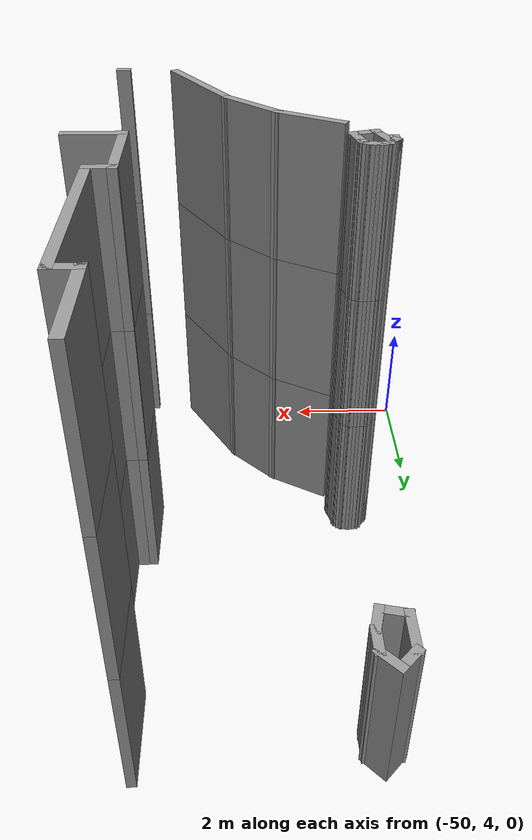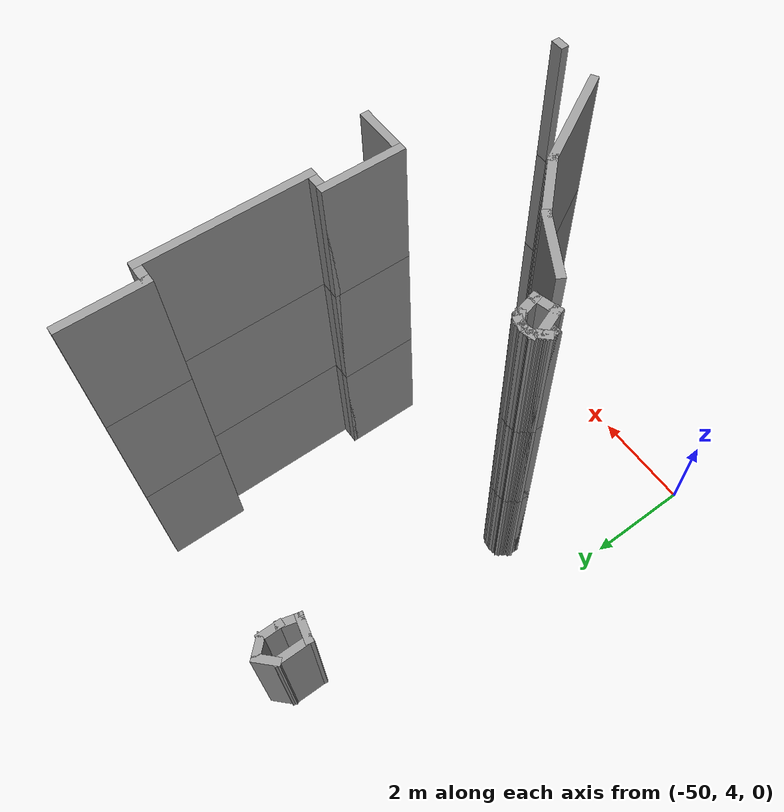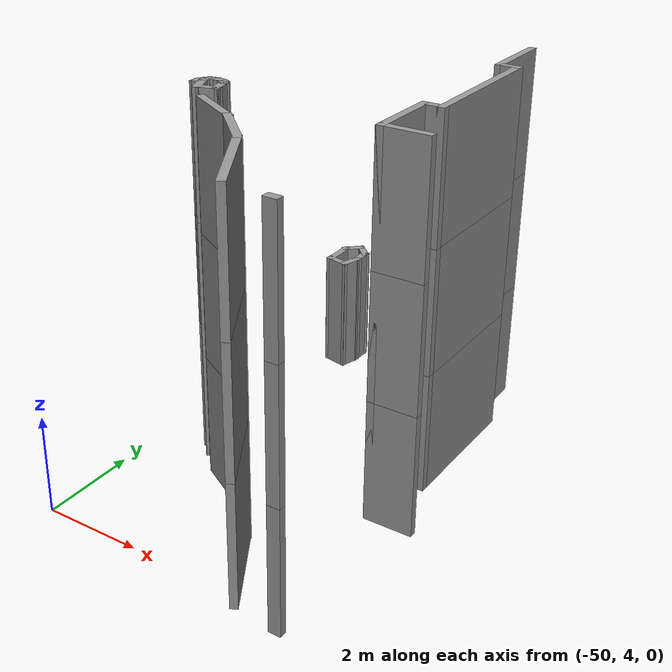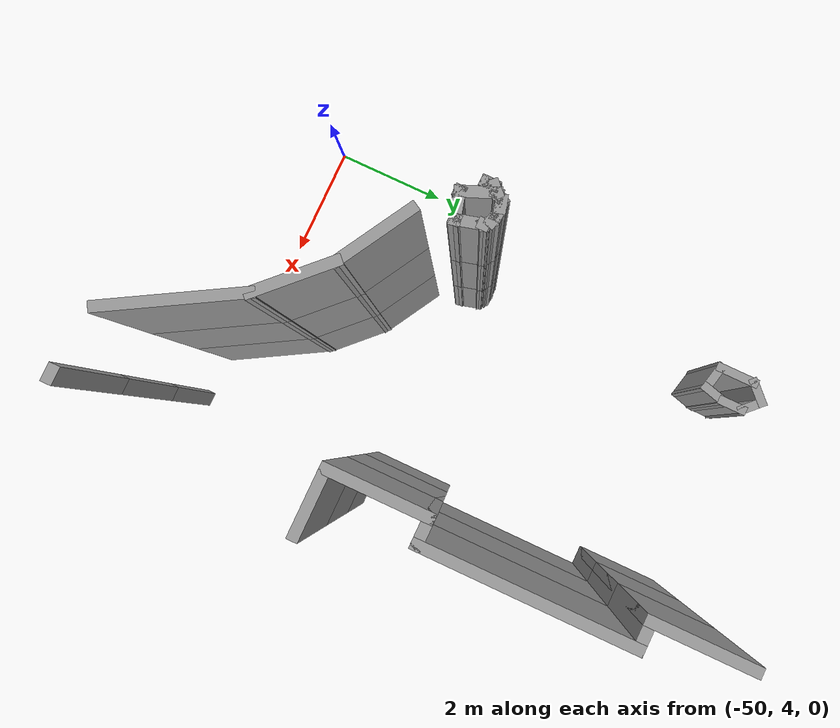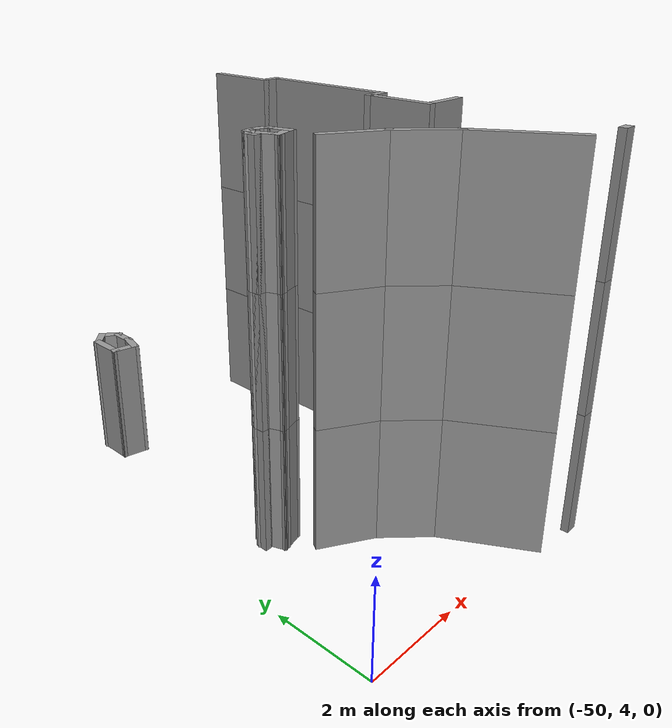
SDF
<sdf version="1.7">
 <model name="mapagazebo">
  <pose>-4.67869 9.01252 0 0 -0 0</pose>
  <link name="Wall_1002">
   <collision name="Wall_1002_Collision">
    <geometry><box><size>0.25 0.15 2.5</size></box></geometry>
    <pose>0 0 1.25 0 -0 0</pose>
   </collision>
   <visual name="Wall_1002_Visual">
    <pose>0 0 1.25 0 -0 0</pose>
    <geometry><box><size>0.25 0.15 2.5</size></box></geometry>
    <material>
     <script><uri>file://media/materials/scripts/gazebo.material</uri><name>Gazebo/Grey</name></script>
     <ambient>1 1 1 1</ambient>
    </material>
    <meta><layer>1</layer></meta>
   </visual>
   <pose>-40.0051 -5.34227 2.5 0 -0 0</pose>
  </link>
  <link name="Wall_1012">
   <collision name="Wall_1012_Collision">
    <geometry><box><size>0.25 0.15 2.5</size></box></geometry>
    <pose>0 0 1.25 0 -0 0</pose>
   </collision>
   <visual name="Wall_1012_Visual">
    <pose>0 0 1.25 0 -0 0</pose>
    <geometry><box><size>0.25 0.15 2.5</size></box></geometry>
    <material>
     <script><uri>file://media/materials/scripts/gazebo.material</uri><name>Gazebo/Grey</name></script>
     <ambient>1 1 1 1</ambient>
    </material>
    <meta><layer>1</layer></meta>
   </visual>
   <pose>-44.2708 -1.57979 2.5 0 -0 -1.5708</pose>
  </link>
  <link name="Wall_1013">
   <collision name="Wall_1013_Collision">
    <geometry><box><size>0.25 0.15 2.5</size></box></geometry>
    <pose>0 0 1.25 0 -0 0</pose>
   </collision>
   <visual name="Wall_1013_Visual">
    <pose>0 0 1.25 0 -0 0</pose>
    <geometry><box><size>0.25 0.15 2.5</size></box></geometry>
    <material>
     <script><uri>file://media/materials/scripts/gazebo.material</uri><name>Gazebo/Grey</name></script>
     <ambient>1 1 1 1</ambient>
    </material>
    <meta><layer>1</layer></meta>
   </visual>
   <pose>-44.2708 -1.57979 2.5 0 -0 1.5708</pose>
  </link>
  <link name="Wall_1014">
   <collision name="Wall_1014_Collision">
    <geometry><box><size>0.25 0.15 2.5</size></box></geometry>
    <pose>0 0 1.25 0 -0 0</pose>
   </collision>
   <visual name="Wall_1014_Visual">
    <pose>0 0 1.25 0 -0 0</pose>
    <geometry><box><size>0.25 0.15 2.5</size></box></geometry>
    <material>
     <script><uri>file://media/materials/scripts/gazebo.material</uri><name>Gazebo/Grey</name></script>
     <ambient>1 1 1 1</ambient>
    </material>
    <meta><layer>1</layer></meta>
   </visual>
   <pose>-44.2354 -1.49444 2.5 0 -0 0.785398</pose>
  </link>
  <link name="Wall_1015">
   <collision name="Wall_1015_Collision">
    <geometry><box><size>0.25 0.15 2.5</size></box></geometry>
    <pose>0 0 1.25 0 -0 0</pose>
   </collision>
   <visual name="Wall_1015_Visual">
    <pose>0 0 1.25 0 -0 0</pose>
    <geometry><box><size>0.25 0.15 2.5</size></box></geometry>
    <material>
     <script><uri>file://media/materials/scripts/gazebo.material</uri><name>Gazebo/Grey</name></script>
     <ambient>1 1 1 1</ambient>
    </material>
    <meta><layer>1</layer></meta>
   </visual>
   <pose>-44.1751 -1.41578 2.5 0 -0 1.0472</pose>
  </link>
  <link name="Wall_1016">
   <collision name="Wall_1016_Collision">
    <geometry><box><size>0.25 0.15 2.5</size></box></geometry>
    <pose>0 0 1.25 0 -0 0</pose>
   </collision>
   <visual name="Wall_1016_Visual">
    <pose>0 0 1.25 0 -0 0</pose>
    <geometry><box><size>0.25 0.15 2.5</size></box></geometry>
    <material>
     <script><uri>file://media/materials/scripts/gazebo.material</uri><name>Gazebo/Grey</name></script>
     <ambient>1 1 1 1</ambient>
    </material>
    <meta><layer>1</layer></meta>
   </visual>
   <pose>-44.1018 -1.35954 2.5 0 -0 0.261799</pose>
  </link>
  <link name="Wall_1017">
   <collision name="Wall_1017_Collision">
    <geometry><box><size>0.25 0.15 2.5</size></box></geometry>
    <pose>0 0 1.25 0 -0 0</pose>
   </collision>
   <visual name="Wall_1017_Visual">
    <pose>0 0 1.25 0 -0 0</pose>
    <geometry><box><size>0.25 0.15 2.5</size></box></geometry>
    <material>
     <script><uri>file://media/materials/scripts/gazebo.material</uri><name>Gazebo/Grey</name></script>
     <ambient>1 1 1 1</ambient>
    </material>
    <meta><layer>1</layer></meta>
   </visual>
   <pose>-44.0035 -1.3466 2.5 0 -0 0</pose>
  </link>
  <link name="Wall_1018">
   <collision name="Wall_1018_Collision">
    <geometry><box><size>0.25 0.15 2.5</size></box></geometry>
    <pose>0 0 1.25 0 -0 0</pose>
   </collision>
   <visual name="Wall_1018_Visual">
    <pose>0 0 1.25 0 -0 0</pose>
    <geometry><box><size>0.25 0.15 2.5</size></box></geometry>
    <material>
     <script><uri>file://media/materials/scripts/gazebo.material</uri><name>Gazebo/Grey</name></script>
     <ambient>1 1 1 1</ambient>
    </material>
    <meta><layer>1</layer></meta>
   </visual>
   <pose>-43.9052 -1.35954 2.5 0 -0 -0.261799</pose>
  </link>
  <link name="Wall_1019">
   <collision name="Wall_1019_Collision">
    <geometry><box><size>0.25 0.15 2.5</size></box></geometry>
    <pose>0 0 1.25 0 -0 0</pose>
   </collision>
   <visual name="Wall_1019_Visual">
    <pose>0 0 1.25 0 -0 0</pose>
    <geometry><box><size>0.25 0.15 2.5</size></box></geometry>
    <material>
     <script><uri>file://media/materials/scripts/gazebo.material</uri><name>Gazebo/Grey</name></script>
     <ambient>1 1 1 1</ambient>
    </material>
    <meta><layer>1</layer></meta>
   </visual>
   <pose>-43.8215 -1.40783 2.5 0 -0 -0.785398</pose>
  </link>
  <link name="Wall_1020">
   <collision name="Wall_1020_Collision">
    <geometry><box><size>0.15 0.15 2.5</size></box></geometry>
    <pose>0 0 1.25 0 -0 0</pose>
   </collision>
   <visual name="Wall_1020_Visual">
    <pose>0 0 1.25 0 -0 0</pose>
    <geometry><box><size>0.15 0.15 2.5</size></box></geometry>
    <material>
     <script><uri>file://media/materials/scripts/gazebo.material</uri><name>Gazebo/Grey</name></script>
     <ambient>1 1 1 1</ambient>
    </material>
    <meta><layer>1</layer></meta>
   </visual>
   <pose>-43.7862 -1.44319 2.5 0 -0 0</pose>
  </link>
  <link name="Wall_1021">
   <collision name="Wall_1021_Collision">
    <geometry><box><size>0.5 0.15 2.5</size></box></geometry>
    <pose>0 0 1.25 0 -0 0</pose>
   </collision>
   <visual name="Wall_1021_Visual">
    <pose>0 0 1.25 0 -0 0</pose>
    <geometry><box><size>0.5 0.15 2.5</size></box></geometry>
    <material>
     <script><uri>file://media/materials/scripts/gazebo.material</uri><name>Gazebo/Grey</name></script>
     <ambient>1 1 1 1</ambient>
    </material>
    <meta><layer>1</layer></meta>
   </visual>
   <pose>-43.7409 -1.61223 2.5 0 -0 -1.309</pose>
  </link>
  <link name="Wall_1022">
   <collision name="Wall_1022_Collision">
    <geometry><box><size>0.15 0.15 2.5</size></box></geometry>
    <pose>0 0 1.25 0 -0 0</pose>
   </collision>
   <visual name="Wall_1022_Visual">
    <pose>0 0 1.25 0 -0 0</pose>
    <geometry><box><size>0.15 0.15 2.5</size></box></geometry>
    <material>
     <script><uri>file://media/materials/scripts/gazebo.material</uri><name>Gazebo/Grey</name></script>
     <ambient>1 1 1 1</ambient>
    </material>
    <meta><layer>1</layer></meta>
   </visual>
   <pose>-43.6956 -1.78126 2.5 0 -0 0</pose>
  </link>
  <link name="Wall_1023">
   <collision name="Wall_1023_Collision">
    <geometry><box><size>0.5 0.15 2.5</size></box></geometry>
    <pose>0 0 1.25 0 -0 0</pose>
   </collision>
   <visual name="Wall_1023_Visual">
    <pose>0 0 1.25 0 -0 0</pose>
    <geometry><box><size>0.5 0.15 2.5</size></box></geometry>
    <material>
     <script><uri>file://media/materials/scripts/gazebo.material</uri><name>Gazebo/Grey</name></script>
     <ambient>1 1 1 1</ambient>
    </material>
    <meta><layer>1</layer></meta>
   </visual>
   <pose>-43.8646 -1.82656 2.5 0 -0 -2.87979</pose>
  </link>
  <link name="Wall_1024">
   <collision name="Wall_1024_Collision">
    <geometry><box><size>0.15 0.15 2.5</size></box></geometry>
    <pose>0 0 1.25 0 -0 0</pose>
   </collision>
   <visual name="Wall_1024_Visual">
    <pose>0 0 1.25 0 -0 0</pose>
    <geometry><box><size>0.15 0.15 2.5</size></box></geometry>
    <material>
     <script><uri>file://media/materials/scripts/gazebo.material</uri><name>Gazebo/Grey</name></script>
     <ambient>1 1 1 1</ambient>
    </material>
    <meta><layer>1</layer></meta>
   </visual>
   <pose>-44.0336 -1.87185 2.5 0 -0 0</pose>
  </link>
  <link name="Wall_1025">
   <collision name="Wall_1025_Collision">
    <geometry><box><size>0.59505 0.15 2.5</size></box></geometry>
    <pose>0 0 1.25 0 -0 0</pose>
   </collision>
   <visual name="Wall_1025_Visual">
    <pose>0 0 1.25 0 -0 0</pose>
    <geometry><box><size>0.59505 0.15 2.5</size></box></geometry>
    <material>
     <script><uri>file://media/materials/scripts/gazebo.material</uri><name>Gazebo/Grey</name></script>
     <ambient>1 1 1 1</ambient>
    </material>
    <meta><layer>1</layer></meta>
   </visual>
   <pose>-44.1169 -1.66547 2.5 0 -0 1.95402</pose>
  </link>
  <link name="Wall_1026">
   <collision name="Wall_1026_Collision">
    <geometry><box><size>0.15 0.15 2.5</size></box></geometry>
    <pose>0 0 1.25 0 -0 0</pose>
   </collision>
   <visual name="Wall_1026_Visual">
    <pose>0 0 1.25 0 -0 0</pose>
    <geometry><box><size>0.15 0.15 2.5</size></box></geometry>
    <material>
     <script><uri>file://media/materials/scripts/gazebo.material</uri><name>Gazebo/Grey</name></script>
     <ambient>1 1 1 1</ambient>
    </material>
    <meta><layer>1</layer></meta>
   </visual>
   <pose>-44.2001 -1.45908 2.5 0 -0 0</pose>
  </link>
  <link name="Wall_120">
   <collision name="Wall_120_Collision">
    <geometry><box><size>1.5 0.15 2.5</size></box></geometry>
    <pose>0 0 1.25 0 -0 0</pose>
   </collision>
   <visual name="Wall_120_Visual">
    <pose>0 0 1.25 0 -0 0</pose>
    <geometry><box><size>1.5 0.15 2.5</size></box></geometry>
    <material>
     <script><uri>file://media/materials/scripts/gazebo.material</uri><name>Gazebo/Grey</name></script>
     <ambient>1 1 1 1</ambient>
    </material>
    <meta><layer>0</layer></meta>
   </visual>
   <pose>-40.3629 2.96831 0 0 -0 -1.5708</pose>
  </link>
  <link name="Wall_121">
   <collision name="Wall_121_Collision">
    <geometry><box><size>0.5 0.15 2.5</size></box></geometry>
    <pose>0 0 1.25 0 -0 0</pose>
   </collision>
   <visual name="Wall_121_Visual">
    <pose>0 0 1.25 0 -0 0</pose>
    <geometry><box><size>0.5 0.15 2.5</size></box></geometry>
    <material>
     <script><uri>file://media/materials/scripts/gazebo.material</uri><name>Gazebo/Grey</name></script>
     <ambient>1 1 1 1</ambient>
    </material>
    <meta><layer>0</layer></meta>
   </visual>
   <pose>-40.1879 2.29331 0 0 -0 0</pose>
  </link>
  <link name="Wall_122">
   <collision name="Wall_122_Collision">
    <geometry><box><size>3 0.15 2.5</size></box></geometry>
    <pose>0 0 1.25 0 -0 0</pose>
   </collision>
   <visual name="Wall_122_Visual">
    <pose>0 0 1.25 0 -0 0</pose>
    <geometry><box><size>3 0.15 2.5</size></box></geometry>
    <material>
     <script><uri>file://media/materials/scripts/gazebo.material</uri><name>Gazebo/Grey</name></script>
     <ambient>1 1 1 1</ambient>
    </material>
    <meta><layer>0</layer></meta>
   </visual>
   <pose>-40.0129 0.868308 0 0 -0 -1.5708</pose>
  </link>
  <link name="Wall_123">
   <collision name="Wall_123_Collision">
    <geometry><box><size>0.5 0.15 2.5</size></box></geometry>
    <pose>0 0 1.25 0 -0 0</pose>
   </collision>
   <visual name="Wall_123_Visual">
    <pose>0 0 1.25 0 -0 0</pose>
    <geometry><box><size>0.5 0.15 2.5</size></box></geometry>
    <material>
     <script><uri>file://media/materials/scripts/gazebo.material</uri><name>Gazebo/Grey</name></script>
     <ambient>1 1 1 1</ambient>
    </material>
    <meta><layer>0</layer></meta>
   </visual>
   <pose>-40.1879 -0.556692 0 0 -0 3.14159</pose>
  </link>
  <link name="Wall_124">
   <collision name="Wall_124_Collision">
    <geometry><box><size>1.5 0.15 2.5</size></box></geometry>
    <pose>0 0 1.25 0 -0 0</pose>
   </collision>
   <visual name="Wall_124_Visual">
    <pose>0 0 1.25 0 -0 0</pose>
    <geometry><box><size>1.5 0.15 2.5</size></box></geometry>
    <material>
     <script><uri>file://media/materials/scripts/gazebo.material</uri><name>Gazebo/Grey</name></script>
     <ambient>1 1 1 1</ambient>
    </material>
    <meta><layer>0</layer></meta>
   </visual>
   <pose>-40.3629 -1.23169 0 0 -0 -1.5708</pose>
  </link>
  <link name="Wall_125">
   <collision name="Wall_125_Collision">
    <geometry><box><size>1 0.15 2.5</size></box></geometry>
    <pose>0 0 1.25 0 -0 0</pose>
   </collision>
   <visual name="Wall_125_Visual">
    <pose>0 0 1.25 0 -0 0</pose>
    <geometry><box><size>1 0.15 2.5</size></box></geometry>
    <material>
     <script><uri>file://media/materials/scripts/gazebo.material</uri><name>Gazebo/Grey</name></script>
     <ambient>1 1 1 1</ambient>
    </material>
    <meta><layer>0</layer></meta>
   </visual>
   <pose>-39.9379 -1.90669 0 0 -0 0</pose>
  </link>
  <link name="Wall_1488">
   <collision name="Wall_1488_Collision">
    <geometry><box><size>1.5 0.15 2.5</size></box></geometry>
    <pose>0 0 1.25 0 -0 0</pose>
   </collision>
   <visual name="Wall_1488_Visual">
    <pose>0 0 1.25 0 -0 0</pose>
    <geometry><box><size>1.5 0.15 2.5</size></box></geometry>
    <material>
     <script><uri>file://media/materials/scripts/gazebo.material</uri><name>Gazebo/Grey</name></script>
     <ambient>1 1 1 1</ambient>
    </material>
    <meta><layer>2</layer></meta>
   </visual>
   <pose>-40.3629 2.96831 5 0 -0 -1.5708</pose>
  </link>
  <link name="Wall_1489">
   <collision name="Wall_1489_Collision">
    <geometry><box><size>0.5 0.15 2.5</size></box></geometry>
    <pose>0 0 1.25 0 -0 0</pose>
   </collision>
   <visual name="Wall_1489_Visual">
    <pose>0 0 1.25 0 -0 0</pose>
    <geometry><box><size>0.5 0.15 2.5</size></box></geometry>
    <material>
     <script><uri>file://media/materials/scripts/gazebo.material</uri><name>Gazebo/Grey</name></script>
     <ambient>1 1 1 1</ambient>
    </material>
    <meta><layer>2</layer></meta>
   </visual>
   <pose>-40.1879 2.29331 5 0 -0 0</pose>
  </link>
  <link name="Wall_1490">
   <collision name="Wall_1490_Collision">
    <geometry><box><size>3 0.15 2.5</size></box></geometry>
    <pose>0 0 1.25 0 -0 0</pose>
   </collision>
   <visual name="Wall_1490_Visual">
    <pose>0 0 1.25 0 -0 0</pose>
    <geometry><box><size>3 0.15 2.5</size></box></geometry>
    <material>
     <script><uri>file://media/materials/scripts/gazebo.material</uri><name>Gazebo/Grey</name></script>
     <ambient>1 1 1 1</ambient>
    </material>
    <meta><layer>2</layer></meta>
   </visual>
   <pose>-40.0129 0.868308 5 0 -0 -1.5708</pose>
  </link>
  <link name="Wall_1491">
   <collision name="Wall_1491_Collision">
    <geometry><box><size>0.5 0.15 2.5</size></box></geometry>
    <pose>0 0 1.25 0 -0 0</pose>
   </collision>
   <visual name="Wall_1491_Visual">
    <pose>0 0 1.25 0 -0 0</pose>
    <geometry><box><size>0.5 0.15 2.5</size></box></geometry>
    <material>
     <script><uri>file://media/materials/scripts/gazebo.material</uri><name>Gazebo/Grey</name></script>
     <ambient>1 1 1 1</ambient>
    </material>
    <meta><layer>2</layer></meta>
   </visual>
   <pose>-40.1879 -0.556692 5 0 -0 3.14159</pose>
  </link>
  <link name="Wall_1492">
   <collision name="Wall_1492_Collision">
    <geometry><box><size>1.5 0.15 2.5</size></box></geometry>
    <pose>0 0 1.25 0 -0 0</pose>
   </collision>
   <visual name="Wall_1492_Visual">
    <pose>0 0 1.25 0 -0 0</pose>
    <geometry><box><size>1.5 0.15 2.5</size></box></geometry>
    <material>
     <script><uri>file://media/materials/scripts/gazebo.material</uri><name>Gazebo/Grey</name></script>
     <ambient>1 1 1 1</ambient>
    </material>
    <meta><layer>2</layer></meta>
   </visual>
   <pose>-40.3629 -1.23169 5 0 -0 -1.5708</pose>
  </link>
  <link name="Wall_1493">
   <collision name="Wall_1493_Collision">
    <geometry><box><size>1 0.15 2.5</size></box></geometry>
    <pose>0 0 1.25 0 -0 0</pose>
   </collision>
   <visual name="Wall_1493_Visual">
    <pose>0 0 1.25 0 -0 0</pose>
    <geometry><box><size>1 0.15 2.5</size></box></geometry>
    <material>
     <script><uri>file://media/materials/scripts/gazebo.material</uri><name>Gazebo/Grey</name></script>
     <ambient>1 1 1 1</ambient>
    </material>
    <meta><layer>2</layer></meta>
   </visual>
   <pose>-39.9379 -1.90669 5 0 -0 0</pose>
  </link>
  <link name="Wall_1549">
   <collision name="Wall_1549_Collision">
    <geometry><box><size>1.25 0.15 2.5</size></box></geometry>
    <pose>0 0 1.25 0 -0 0</pose>
   </collision>
   <visual name="Wall_1549_Visual">
    <pose>0 0 1.25 0 -0 0</pose>
    <geometry><box><size>1.25 0.15 2.5</size></box></geometry>
    <material>
     <script><uri>file://media/materials/scripts/gazebo.material</uri><name>Gazebo/Grey</name></script>
     <ambient>1 1 1 1</ambient>
    </material>
    <meta><layer>2</layer></meta>
   </visual>
   <pose>-43.122 -2.57638 5 0 -0 -0.523599</pose>
  </link>
  <link name="Wall_1550">
   <collision name="Wall_1550_Collision">
    <geometry><box><size>1.25 0.15 2.5</size></box></geometry>
    <pose>0 0 1.25 0 -0 0</pose>
   </collision>
   <visual name="Wall_1550_Visual">
    <pose>0 0 1.25 0 -0 0</pose>
    <geometry><box><size>1.25 0.15 2.5</size></box></geometry>
    <material>
     <script><uri>file://media/materials/scripts/gazebo.material</uri><name>Gazebo/Grey</name></script>
     <ambient>1 1 1 1</ambient>
    </material>
    <meta><layer>2</layer></meta>
   </visual>
   <pose>-42.2568 -3.24029 5 0 -0 -0.785398</pose>
  </link>
  <link name="Wall_1551">
   <collision name="Wall_1551_Collision">
    <geometry><box><size>2 0.15 2.5</size></box></geometry>
    <pose>0 0 1.25 0 -0 0</pose>
   </collision>
   <visual name="Wall_1551_Visual">
    <pose>0 0 1.25 0 -0 0</pose>
    <geometry><box><size>2 0.15 2.5</size></box></geometry>
    <material>
     <script><uri>file://media/materials/scripts/gazebo.material</uri><name>Gazebo/Grey</name></script>
     <ambient>1 1 1 1</ambient>
    </material>
    <meta><layer>2</layer></meta>
   </visual>
   <pose>-41.4054 -4.43027 5 0 -0 -1.0472</pose>
  </link>
  <link name="Wall_1626">
   <collision name="Wall_1626_Collision">
    <geometry><box><size>0.25 0.15 2.5</size></box></geometry>
    <pose>0 0 1.25 0 -0 0</pose>
   </collision>
   <visual name="Wall_1626_Visual">
    <pose>0 0 1.25 0 -0 0</pose>
    <geometry><box><size>0.25 0.15 2.5</size></box></geometry>
    <material>
     <script><uri>file://media/materials/scripts/gazebo.material</uri><name>Gazebo/Grey</name></script>
     <ambient>1 1 1 1</ambient>
    </material>
    <meta><layer>2</layer></meta>
   </visual>
   <pose>-40.0051 -5.34227 5 0 -0 0</pose>
  </link>
  <link name="Wall_1635">
   <collision name="Wall_1635_Collision">
    <geometry><box><size>0.25 0.15 2.5</size></box></geometry>
    <pose>0 0 1.25 0 -0 0</pose>
   </collision>
   <visual name="Wall_1635_Visual">
    <pose>0 0 1.25 0 -0 0</pose>
    <geometry><box><size>0.25 0.15 2.5</size></box></geometry>
    <material>
     <script><uri>file://media/materials/scripts/gazebo.material</uri><name>Gazebo/Grey</name></script>
     <ambient>1 1 1 1</ambient>
    </material>
    <meta><layer>2</layer></meta>
   </visual>
   <pose>-44.2708 -1.57979 5 0 -0 1.5708</pose>
  </link>
  <link name="Wall_1636">
   <collision name="Wall_1636_Collision">
    <geometry><box><size>0.25 0.15 2.5</size></box></geometry>
    <pose>0 0 1.25 0 -0 0</pose>
   </collision>
   <visual name="Wall_1636_Visual">
    <pose>0 0 1.25 0 -0 0</pose>
    <geometry><box><size>0.25 0.15 2.5</size></box></geometry>
    <material>
     <script><uri>file://media/materials/scripts/gazebo.material</uri><name>Gazebo/Grey</name></script>
     <ambient>1 1 1 1</ambient>
    </material>
    <meta><layer>2</layer></meta>
   </visual>
   <pose>-44.2708 -1.57979 5 0 -0 -1.5708</pose>
  </link>
  <link name="Wall_1637">
   <collision name="Wall_1637_Collision">
    <geometry><box><size>0.25 0.15 2.5</size></box></geometry>
    <pose>0 0 1.25 0 -0 0</pose>
   </collision>
   <visual name="Wall_1637_Visual">
    <pose>0 0 1.25 0 -0 0</pose>
    <geometry><box><size>0.25 0.15 2.5</size></box></geometry>
    <material>
     <script><uri>file://media/materials/scripts/gazebo.material</uri><name>Gazebo/Grey</name></script>
     <ambient>1 1 1 1</ambient>
    </material>
    <meta><layer>2</layer></meta>
   </visual>
   <pose>-44.2708 -1.57979 5 0 -0 1.5708</pose>
  </link>
  <link name="Wall_1638">
   <collision name="Wall_1638_Collision">
    <geometry><box><size>0.25 0.15 2.5</size></box></geometry>
    <pose>0 0 1.25 0 -0 0</pose>
   </collision>
   <visual name="Wall_1638_Visual">
    <pose>0 0 1.25 0 -0 0</pose>
    <geometry><box><size>0.25 0.15 2.5</size></box></geometry>
    <material>
     <script><uri>file://media/materials/scripts/gazebo.material</uri><name>Gazebo/Grey</name></script>
     <ambient>1 1 1 1</ambient>
    </material>
    <meta><layer>2</layer></meta>
   </visual>
   <pose>-44.2354 -1.49444 5 0 -0 0.785398</pose>
  </link>
  <link name="Wall_1639">
   <collision name="Wall_1639_Collision">
    <geometry><box><size>0.25 0.15 2.5</size></box></geometry>
    <pose>0 0 1.25 0 -0 0</pose>
   </collision>
   <visual name="Wall_1639_Visual">
    <pose>0 0 1.25 0 -0 0</pose>
    <geometry><box><size>0.25 0.15 2.5</size></box></geometry>
    <material>
     <script><uri>file://media/materials/scripts/gazebo.material</uri><name>Gazebo/Grey</name></script>
     <ambient>1 1 1 1</ambient>
    </material>
    <meta><layer>2</layer></meta>
   </visual>
   <pose>-44.1751 -1.41578 5 0 -0 1.0472</pose>
  </link>
  <link name="Wall_1640">
   <collision name="Wall_1640_Collision">
    <geometry><box><size>0.25 0.15 2.5</size></box></geometry>
    <pose>0 0 1.25 0 -0 0</pose>
   </collision>
   <visual name="Wall_1640_Visual">
    <pose>0 0 1.25 0 -0 0</pose>
    <geometry><box><size>0.25 0.15 2.5</size></box></geometry>
    <material>
     <script><uri>file://media/materials/scripts/gazebo.material</uri><name>Gazebo/Grey</name></script>
     <ambient>1 1 1 1</ambient>
    </material>
    <meta><layer>2</layer></meta>
   </visual>
   <pose>-44.1018 -1.35954 5 0 -0 0.261799</pose>
  </link>
  <link name="Wall_1641">
   <collision name="Wall_1641_Collision">
    <geometry><box><size>0.25 0.15 2.5</size></box></geometry>
    <pose>0 0 1.25 0 -0 0</pose>
   </collision>
   <visual name="Wall_1641_Visual">
    <pose>0 0 1.25 0 -0 0</pose>
    <geometry><box><size>0.25 0.15 2.5</size></box></geometry>
    <material>
     <script><uri>file://media/materials/scripts/gazebo.material</uri><name>Gazebo/Grey</name></script>
     <ambient>1 1 1 1</ambient>
    </material>
    <meta><layer>2</layer></meta>
   </visual>
   <pose>-44.0035 -1.3466 5 0 -0 0</pose>
  </link>
  <link name="Wall_1642">
   <collision name="Wall_1642_Collision">
    <geometry><box><size>0.25 0.15 2.5</size></box></geometry>
    <pose>0 0 1.25 0 -0 0</pose>
   </collision>
   <visual name="Wall_1642_Visual">
    <pose>0 0 1.25 0 -0 0</pose>
    <geometry><box><size>0.25 0.15 2.5</size></box></geometry>
    <material>
     <script><uri>file://media/materials/scripts/gazebo.material</uri><name>Gazebo/Grey</name></script>
     <ambient>1 1 1 1</ambient>
    </material>
    <meta><layer>2</layer></meta>
   </visual>
   <pose>-43.9052 -1.35954 5 0 -0 -0.261799</pose>
  </link>
  <link name="Wall_1643">
   <collision name="Wall_1643_Collision">
    <geometry><box><size>0.25 0.15 2.5</size></box></geometry>
    <pose>0 0 1.25 0 -0 0</pose>
   </collision>
   <visual name="Wall_1643_Visual">
    <pose>0 0 1.25 0 -0 0</pose>
    <geometry><box><size>0.25 0.15 2.5</size></box></geometry>
    <material>
     <script><uri>file://media/materials/scripts/gazebo.material</uri><name>Gazebo/Grey</name></script>
     <ambient>1 1 1 1</ambient>
    </material>
    <meta><layer>2</layer></meta>
   </visual>
   <pose>-43.8215 -1.40783 5 0 -0 -0.785398</pose>
  </link>
  <link name="Wall_1644">
   <collision name="Wall_1644_Collision">
    <geometry><box><size>0.15 0.15 2.5</size></box></geometry>
    <pose>0 0 1.25 0 -0 0</pose>
   </collision>
   <visual name="Wall_1644_Visual">
    <pose>0 0 1.25 0 -0 0</pose>
    <geometry><box><size>0.15 0.15 2.5</size></box></geometry>
    <material>
     <script><uri>file://media/materials/scripts/gazebo.material</uri><name>Gazebo/Grey</name></script>
     <ambient>1 1 1 1</ambient>
    </material>
    <meta><layer>2</layer></meta>
   </visual>
   <pose>-43.7862 -1.44319 5 0 -0 0</pose>
  </link>
  <link name="Wall_1645">
   <collision name="Wall_1645_Collision">
    <geometry><box><size>0.5 0.15 2.5</size></box></geometry>
    <pose>0 0 1.25 0 -0 0</pose>
   </collision>
   <visual name="Wall_1645_Visual">
    <pose>0 0 1.25 0 -0 0</pose>
    <geometry><box><size>0.5 0.15 2.5</size></box></geometry>
    <material>
     <script><uri>file://media/materials/scripts/gazebo.material</uri><name>Gazebo/Grey</name></script>
     <ambient>1 1 1 1</ambient>
    </material>
    <meta><layer>2</layer></meta>
   </visual>
   <pose>-43.7409 -1.61223 5 0 -0 -1.309</pose>
  </link>
  <link name="Wall_1646">
   <collision name="Wall_1646_Collision">
    <geometry><box><size>0.15 0.15 2.5</size></box></geometry>
    <pose>0 0 1.25 0 -0 0</pose>
   </collision>
   <visual name="Wall_1646_Visual">
    <pose>0 0 1.25 0 -0 0</pose>
    <geometry><box><size>0.15 0.15 2.5</size></box></geometry>
    <material>
     <script><uri>file://media/materials/scripts/gazebo.material</uri><name>Gazebo/Grey</name></script>
     <ambient>1 1 1 1</ambient>
    </material>
    <meta><layer>2</layer></meta>
   </visual>
   <pose>-43.6956 -1.78126 5 0 -0 0</pose>
  </link>
  <link name="Wall_1647">
   <collision name="Wall_1647_Collision">
    <geometry><box><size>0.5 0.15 2.5</size></box></geometry>
    <pose>0 0 1.25 0 -0 0</pose>
   </collision>
   <visual name="Wall_1647_Visual">
    <pose>0 0 1.25 0 -0 0</pose>
    <geometry><box><size>0.5 0.15 2.5</size></box></geometry>
    <material>
     <script><uri>file://media/materials/scripts/gazebo.material</uri><name>Gazebo/Grey</name></script>
     <ambient>1 1 1 1</ambient>
    </material>
    <meta><layer>2</layer></meta>
   </visual>
   <pose>-43.8646 -1.82656 5 0 -0 -2.87979</pose>
  </link>
  <link name="Wall_1648">
   <collision name="Wall_1648_Collision">
    <geometry><box><size>0.15 0.15 2.5</size></box></geometry>
    <pose>0 0 1.25 0 -0 0</pose>
   </collision>
   <visual name="Wall_1648_Visual">
    <pose>0 0 1.25 0 -0 0</pose>
    <geometry><box><size>0.15 0.15 2.5</size></box></geometry>
    <material>
     <script><uri>file://media/materials/scripts/gazebo.material</uri><name>Gazebo/Grey</name></script>
     <ambient>1 1 1 1</ambient>
    </material>
    <meta><layer>2</layer></meta>
   </visual>
   <pose>-44.0336 -1.87185 5 0 -0 0</pose>
  </link>
  <link name="Wall_1649">
   <collision name="Wall_1649_Collision">
    <geometry><box><size>0.59505 0.15 2.5</size></box></geometry>
    <pose>0 0 1.25 0 -0 0</pose>
   </collision>
   <visual name="Wall_1649_Visual">
    <pose>0 0 1.25 0 -0 0</pose>
    <geometry><box><size>0.59505 0.15 2.5</size></box></geometry>
    <material>
     <script><uri>file://media/materials/scripts/gazebo.material</uri><name>Gazebo/Grey</name></script>
     <ambient>1 1 1 1</ambient>
    </material>
    <meta><layer>2</layer></meta>
   </visual>
   <pose>-44.1169 -1.66547 5 0 -0 1.95402</pose>
  </link>
  <link name="Wall_1650">
   <collision name="Wall_1650_Collision">
    <geometry><box><size>0.15 0.15 2.5</size></box></geometry>
    <pose>0 0 1.25 0 -0 0</pose>
   </collision>
   <visual name="Wall_1650_Visual">
    <pose>0 0 1.25 0 -0 0</pose>
    <geometry><box><size>0.15 0.15 2.5</size></box></geometry>
    <material>
     <script><uri>file://media/materials/scripts/gazebo.material</uri><name>Gazebo/Grey</name></script>
     <ambient>1 1 1 1</ambient>
    </material>
    <meta><layer>2</layer></meta>
   </visual>
   <pose>-44.2001 -1.45908 5 0 -0 0</pose>
  </link>
  <link name="Wall_195">
   <collision name="Wall_195_Collision">
    <geometry><box><size>1.25 0.15 2.5</size></box></geometry>
    <pose>0 0 1.25 0 -0 0</pose>
   </collision>
   <visual name="Wall_195_Visual">
    <pose>0 0 1.25 0 -0 0</pose>
    <geometry><box><size>1.25 0.15 2.5</size></box></geometry>
    <material>
     <script><uri>file://media/materials/scripts/gazebo.material</uri><name>Gazebo/Grey</name></script>
     <ambient>1 1 1 1</ambient>
    </material>
    <meta><layer>0</layer></meta>
   </visual>
   <pose>-43.122 -2.57638 0 0 -0 -0.523599</pose>
  </link>
  <link name="Wall_196">
   <collision name="Wall_196_Collision">
    <geometry><box><size>1.25 0.15 2.5</size></box></geometry>
    <pose>0 0 1.25 0 -0 0</pose>
   </collision>
   <visual name="Wall_196_Visual">
    <pose>0 0 1.25 0 -0 0</pose>
    <geometry><box><size>1.25 0.15 2.5</size></box></geometry>
    <material>
     <script><uri>file://media/materials/scripts/gazebo.material</uri><name>Gazebo/Grey</name></script>
     <ambient>1 1 1 1</ambient>
    </material>
    <meta><layer>0</layer></meta>
   </visual>
   <pose>-42.2568 -3.24029 0 0 -0 -0.785398</pose>
  </link>
  <link name="Wall_198">
   <collision name="Wall_198_Collision">
    <geometry><box><size>2 0.15 2.5</size></box></geometry>
    <pose>0 0 1.25 0 -0 0</pose>
   </collision>
   <visual name="Wall_198_Visual">
    <pose>0 0 1.25 0 -0 0</pose>
    <geometry><box><size>2 0.15 2.5</size></box></geometry>
    <material>
     <script><uri>file://media/materials/scripts/gazebo.material</uri><name>Gazebo/Grey</name></script>
     <ambient>1 1 1 1</ambient>
    </material>
    <meta><layer>0</layer></meta>
   </visual>
   <pose>-41.4054 -4.43027 0 0 -0 -1.0472</pose>
  </link>
  <link name="Wall_2184">
   <collision name="Wall_2184_Collision">
    <geometry><box><size>0.75 0.15 2.5</size></box></geometry>
    <pose>0 0 1.25 0 -0 0</pose>
   </collision>
   <visual name="Wall_2184_Visual">
    <pose>0 0 1.25 0 -0 0</pose>
    <geometry><box><size>0.75 0.15 2.5</size></box></geometry>
    <material>
     <script><uri>file://media/materials/scripts/gazebo.material</uri><name>Gazebo/Grey</name></script>
     <ambient>1 1 1 1</ambient>
    </material>
    <meta><layer>0</layer></meta>
   </visual>
   <pose>-44.2299 3.08769 0 0 -0 1.5708</pose>
  </link>
  <link name="Wall_2185">
   <collision name="Wall_2185_Collision">
    <geometry><box><size>0.5 0.15 2.5</size></box></geometry>
    <pose>0 0 1.25 0 -0 0</pose>
   </collision>
   <visual name="Wall_2185_Visual">
    <pose>0 0 1.25 0 -0 0</pose>
    <geometry><box><size>0.5 0.15 2.5</size></box></geometry>
    <material>
     <script><uri>file://media/materials/scripts/gazebo.material</uri><name>Gazebo/Grey</name></script>
     <ambient>1 1 1 1</ambient>
    </material>
    <meta><layer>0</layer></meta>
   </visual>
   <pose>-44.1062 3.51144 0 0 -0 0.785398</pose>
  </link>
  <link name="Wall_2186">
   <collision name="Wall_2186_Collision">
    <geometry><box><size>0.5 0.15 2.5</size></box></geometry>
    <pose>0 0 1.25 0 -0 0</pose>
   </collision>
   <visual name="Wall_2186_Visual">
    <pose>0 0 1.25 0 -0 0</pose>
    <geometry><box><size>0.5 0.15 2.5</size></box></geometry>
    <material>
     <script><uri>file://media/materials/scripts/gazebo.material</uri><name>Gazebo/Grey</name></script>
     <ambient>1 1 1 1</ambient>
    </material>
    <meta><layer>0</layer></meta>
   </visual>
   <pose>-43.8587 3.51144 0 0 -0 -0.785398</pose>
  </link>
  <link name="Wall_2187">
   <collision name="Wall_2187_Collision">
    <geometry><box><size>0.5 0.15 2.5</size></box></geometry>
    <pose>0 0 1.25 0 -0 0</pose>
   </collision>
   <visual name="Wall_2187_Visual">
    <pose>0 0 1.25 0 -0 0</pose>
    <geometry><box><size>0.5 0.15 2.5</size></box></geometry>
    <material>
     <script><uri>file://media/materials/scripts/gazebo.material</uri><name>Gazebo/Grey</name></script>
     <ambient>1 1 1 1</ambient>
    </material>
    <meta><layer>0</layer></meta>
   </visual>
   <pose>-43.7349 3.21269 0 0 -0 -1.5708</pose>
  </link>
  <link name="Wall_2188">
   <collision name="Wall_2188_Collision">
    <geometry><box><size>0.5 0.15 2.5</size></box></geometry>
    <pose>0 0 1.25 0 -0 0</pose>
   </collision>
   <visual name="Wall_2188_Visual">
    <pose>0 0 1.25 0 -0 0</pose>
    <geometry><box><size>0.5 0.15 2.5</size></box></geometry>
    <material>
     <script><uri>file://media/materials/scripts/gazebo.material</uri><name>Gazebo/Grey</name></script>
     <ambient>1 1 1 1</ambient>
    </material>
    <meta><layer>0</layer></meta>
   </visual>
   <pose>-43.7802 2.86866 0 0 -0 -1.8326</pose>
  </link>
  <link name="Wall_2189">
   <collision name="Wall_2189_Collision">
    <geometry><box><size>0.563868 0.15 2.5</size></box></geometry>
    <pose>0 0 1.25 0 -0 0</pose>
   </collision>
   <visual name="Wall_2189_Visual">
    <pose>0 0 1.25 0 -0 0</pose>
    <geometry><box><size>0.563868 0.15 2.5</size></box></geometry>
    <material>
     <script><uri>file://media/materials/scripts/gazebo.material</uri><name>Gazebo/Grey</name></script>
     <ambient>1 1 1 1</ambient>
    </material>
    <meta><layer>0</layer></meta>
   </visual>
   <pose>-44.0277 2.74366 0 0 -0 2.92715</pose>
  </link>
  <link name="Wall_288">
   <collision name="Wall_288_Collision">
    <geometry><box><size>0.25 0.15 2.5</size></box></geometry>
    <pose>0 0 1.25 0 -0 0</pose>
   </collision>
   <visual name="Wall_288_Visual">
    <pose>0 0 1.25 0 -0 0</pose>
    <geometry><box><size>0.25 0.15 2.5</size></box></geometry>
    <material>
     <script><uri>file://media/materials/scripts/gazebo.material</uri><name>Gazebo/Grey</name></script>
     <ambient>1 1 1 1</ambient>
    </material>
    <meta><layer>0</layer></meta>
   </visual>
   <pose>-40.0051 -5.34227 0 0 -0 0</pose>
  </link>
  <link name="Wall_298">
   <collision name="Wall_298_Collision">
    <geometry><box><size>0.25 0.15 2.5</size></box></geometry>
    <pose>0 0 1.25 0 -0 0</pose>
   </collision>
   <visual name="Wall_298_Visual">
    <pose>0 0 1.25 0 -0 0</pose>
    <geometry><box><size>0.25 0.15 2.5</size></box></geometry>
    <material>
     <script><uri>file://media/materials/scripts/gazebo.material</uri><name>Gazebo/Grey</name></script>
     <ambient>1 1 1 1</ambient>
    </material>
    <meta><layer>0</layer></meta>
   </visual>
   <pose>-44.2708 -1.57979 0 0 -0 1.5708</pose>
  </link>
  <link name="Wall_299">
   <collision name="Wall_299_Collision">
    <geometry><box><size>0.25 0.15 2.5</size></box></geometry>
    <pose>0 0 1.25 0 -0 0</pose>
   </collision>
   <visual name="Wall_299_Visual">
    <pose>0 0 1.25 0 -0 0</pose>
    <geometry><box><size>0.25 0.15 2.5</size></box></geometry>
    <material>
     <script><uri>file://media/materials/scripts/gazebo.material</uri><name>Gazebo/Grey</name></script>
     <ambient>1 1 1 1</ambient>
    </material>
    <meta><layer>0</layer></meta>
   </visual>
   <pose>-44.2708 -1.57979 0 0 -0 -1.5708</pose>
  </link>
  <link name="Wall_300">
   <collision name="Wall_300_Collision">
    <geometry><box><size>0.25 0.15 2.5</size></box></geometry>
    <pose>0 0 1.25 0 -0 0</pose>
   </collision>
   <visual name="Wall_300_Visual">
    <pose>0 0 1.25 0 -0 0</pose>
    <geometry><box><size>0.25 0.15 2.5</size></box></geometry>
    <material>
     <script><uri>file://media/materials/scripts/gazebo.material</uri><name>Gazebo/Grey</name></script>
     <ambient>1 1 1 1</ambient>
    </material>
    <meta><layer>0</layer></meta>
   </visual>
   <pose>-44.2708 -1.57979 0 0 -0 1.5708</pose>
  </link>
  <link name="Wall_301">
   <collision name="Wall_301_Collision">
    <geometry><box><size>0.25 0.15 2.5</size></box></geometry>
    <pose>0 0 1.25 0 -0 0</pose>
   </collision>
   <visual name="Wall_301_Visual">
    <pose>0 0 1.25 0 -0 0</pose>
    <geometry><box><size>0.25 0.15 2.5</size></box></geometry>
    <material>
     <script><uri>file://media/materials/scripts/gazebo.material</uri><name>Gazebo/Grey</name></script>
     <ambient>1 1 1 1</ambient>
    </material>
    <meta><layer>0</layer></meta>
   </visual>
   <pose>-44.2354 -1.49444 0 0 -0 0.785398</pose>
  </link>
  <link name="Wall_302">
   <collision name="Wall_302_Collision">
    <geometry><box><size>0.25 0.15 2.5</size></box></geometry>
    <pose>0 0 1.25 0 -0 0</pose>
   </collision>
   <visual name="Wall_302_Visual">
    <pose>0 0 1.25 0 -0 0</pose>
    <geometry><box><size>0.25 0.15 2.5</size></box></geometry>
    <material>
     <script><uri>file://media/materials/scripts/gazebo.material</uri><name>Gazebo/Grey</name></script>
     <ambient>1 1 1 1</ambient>
    </material>
    <meta><layer>0</layer></meta>
   </visual>
   <pose>-44.1751 -1.41578 0 0 -0 1.0472</pose>
  </link>
  <link name="Wall_303">
   <collision name="Wall_303_Collision">
    <geometry><box><size>0.25 0.15 2.5</size></box></geometry>
    <pose>0 0 1.25 0 -0 0</pose>
   </collision>
   <visual name="Wall_303_Visual">
    <pose>0 0 1.25 0 -0 0</pose>
    <geometry><box><size>0.25 0.15 2.5</size></box></geometry>
    <material>
     <script><uri>file://media/materials/scripts/gazebo.material</uri><name>Gazebo/Grey</name></script>
     <ambient>1 1 1 1</ambient>
    </material>
    <meta><layer>0</layer></meta>
   </visual>
   <pose>-44.1018 -1.35954 0 0 -0 0.261799</pose>
  </link>
  <link name="Wall_304">
   <collision name="Wall_304_Collision">
    <geometry><box><size>0.25 0.15 2.5</size></box></geometry>
    <pose>0 0 1.25 0 -0 0</pose>
   </collision>
   <visual name="Wall_304_Visual">
    <pose>0 0 1.25 0 -0 0</pose>
    <geometry><box><size>0.25 0.15 2.5</size></box></geometry>
    <material>
     <script><uri>file://media/materials/scripts/gazebo.material</uri><name>Gazebo/Grey</name></script>
     <ambient>1 1 1 1</ambient>
    </material>
    <meta><layer>0</layer></meta>
   </visual>
   <pose>-44.0035 -1.3466 0 0 -0 0</pose>
  </link>
  <link name="Wall_305">
   <collision name="Wall_305_Collision">
    <geometry><box><size>0.25 0.15 2.5</size></box></geometry>
    <pose>0 0 1.25 0 -0 0</pose>
   </collision>
   <visual name="Wall_305_Visual">
    <pose>0 0 1.25 0 -0 0</pose>
    <geometry><box><size>0.25 0.15 2.5</size></box></geometry>
    <material>
     <script><uri>file://media/materials/scripts/gazebo.material</uri><name>Gazebo/Grey</name></script>
     <ambient>1 1 1 1</ambient>
    </material>
    <meta><layer>0</layer></meta>
   </visual>
   <pose>-43.9052 -1.35954 0 0 -0 -0.261799</pose>
  </link>
  <link name="Wall_306">
   <collision name="Wall_306_Collision">
    <geometry><box><size>0.25 0.15 2.5</size></box></geometry>
    <pose>0 0 1.25 0 -0 0</pose>
   </collision>
   <visual name="Wall_306_Visual">
    <pose>0 0 1.25 0 -0 0</pose>
    <geometry><box><size>0.25 0.15 2.5</size></box></geometry>
    <material>
     <script><uri>file://media/materials/scripts/gazebo.material</uri><name>Gazebo/Grey</name></script>
     <ambient>1 1 1 1</ambient>
    </material>
    <meta><layer>0</layer></meta>
   </visual>
   <pose>-43.8215 -1.40783 0 0 -0 -0.785398</pose>
  </link>
  <link name="Wall_307">
   <collision name="Wall_307_Collision">
    <geometry><box><size>0.15 0.15 2.5</size></box></geometry>
    <pose>0 0 1.25 0 -0 0</pose>
   </collision>
   <visual name="Wall_307_Visual">
    <pose>0 0 1.25 0 -0 0</pose>
    <geometry><box><size>0.15 0.15 2.5</size></box></geometry>
    <material>
     <script><uri>file://media/materials/scripts/gazebo.material</uri><name>Gazebo/Grey</name></script>
     <ambient>1 1 1 1</ambient>
    </material>
    <meta><layer>0</layer></meta>
   </visual>
   <pose>-43.7862 -1.44319 0 0 -0 0</pose>
  </link>
  <link name="Wall_308">
   <collision name="Wall_308_Collision">
    <geometry><box><size>0.5 0.15 2.5</size></box></geometry>
    <pose>0 0 1.25 0 -0 0</pose>
   </collision>
   <visual name="Wall_308_Visual">
    <pose>0 0 1.25 0 -0 0</pose>
    <geometry><box><size>0.5 0.15 2.5</size></box></geometry>
    <material>
     <script><uri>file://media/materials/scripts/gazebo.material</uri><name>Gazebo/Grey</name></script>
     <ambient>1 1 1 1</ambient>
    </material>
    <meta><layer>0</layer></meta>
   </visual>
   <pose>-43.7409 -1.61223 0 0 -0 -1.309</pose>
  </link>
  <link name="Wall_309">
   <collision name="Wall_309_Collision">
    <geometry><box><size>0.15 0.15 2.5</size></box></geometry>
    <pose>0 0 1.25 0 -0 0</pose>
   </collision>
   <visual name="Wall_309_Visual">
    <pose>0 0 1.25 0 -0 0</pose>
    <geometry><box><size>0.15 0.15 2.5</size></box></geometry>
    <material>
     <script><uri>file://media/materials/scripts/gazebo.material</uri><name>Gazebo/Grey</name></script>
     <ambient>1 1 1 1</ambient>
    </material>
    <meta><layer>0</layer></meta>
   </visual>
   <pose>-43.6956 -1.78126 0 0 -0 0</pose>
  </link>
  <link name="Wall_310">
   <collision name="Wall_310_Collision">
    <geometry><box><size>0.5 0.15 2.5</size></box></geometry>
    <pose>0 0 1.25 0 -0 0</pose>
   </collision>
   <visual name="Wall_310_Visual">
    <pose>0 0 1.25 0 -0 0</pose>
    <geometry><box><size>0.5 0.15 2.5</size></box></geometry>
    <material>
     <script><uri>file://media/materials/scripts/gazebo.material</uri><name>Gazebo/Grey</name></script>
     <ambient>1 1 1 1</ambient>
    </material>
    <meta><layer>0</layer></meta>
   </visual>
   <pose>-43.8646 -1.82656 0 0 -0 -2.87979</pose>
  </link>
  <link name="Wall_311">
   <collision name="Wall_311_Collision">
    <geometry><box><size>0.15 0.15 2.5</size></box></geometry>
    <pose>0 0 1.25 0 -0 0</pose>
   </collision>
   <visual name="Wall_311_Visual">
    <pose>0 0 1.25 0 -0 0</pose>
    <geometry><box><size>0.15 0.15 2.5</size></box></geometry>
    <material>
     <script><uri>file://media/materials/scripts/gazebo.material</uri><name>Gazebo/Grey</name></script>
     <ambient>1 1 1 1</ambient>
    </material>
    <meta><layer>0</layer></meta>
   </visual>
   <pose>-44.0336 -1.87185 0 0 -0 0</pose>
  </link>
  <link name="Wall_312">
   <collision name="Wall_312_Collision">
    <geometry><box><size>0.59505 0.15 2.5</size></box></geometry>
    <pose>0 0 1.25 0 -0 0</pose>
   </collision>
   <visual name="Wall_312_Visual">
    <pose>0 0 1.25 0 -0 0</pose>
    <geometry><box><size>0.59505 0.15 2.5</size></box></geometry>
    <material>
     <script><uri>file://media/materials/scripts/gazebo.material</uri><name>Gazebo/Grey</name></script>
     <ambient>1 1 1 1</ambient>
    </material>
    <meta><layer>0</layer></meta>
   </visual>
   <pose>-44.1169 -1.66547 0 0 -0 1.95402</pose>
  </link>
  <link name="Wall_313">
   <collision name="Wall_313_Collision">
    <geometry><box><size>0.15 0.15 2.5</size></box></geometry>
    <pose>0 0 1.25 0 -0 0</pose>
   </collision>
   <visual name="Wall_313_Visual">
    <pose>0 0 1.25 0 -0 0</pose>
    <geometry><box><size>0.15 0.15 2.5</size></box></geometry>
    <material>
     <script><uri>file://media/materials/scripts/gazebo.material</uri><name>Gazebo/Grey</name></script>
     <ambient>1 1 1 1</ambient>
    </material>
    <meta><layer>0</layer></meta>
   </visual>
   <pose>-44.2001 -1.45908 0 0 -0 0</pose>
  </link>
  <link name="Wall_864">
   <collision name="Wall_864_Collision">
    <geometry><box><size>1.5 0.15 2.5</size></box></geometry>
    <pose>0 0 1.25 0 -0 0</pose>
   </collision>
   <visual name="Wall_864_Visual">
    <pose>0 0 1.25 0 -0 0</pose>
    <geometry><box><size>1.5 0.15 2.5</size></box></geometry>
    <material>
     <script><uri>file://media/materials/scripts/gazebo.material</uri><name>Gazebo/Grey</name></script>
     <ambient>1 1 1 1</ambient>
    </material>
    <meta><layer>1</layer></meta>
   </visual>
   <pose>-40.3629 2.96831 2.5 0 -0 -1.5708</pose>
  </link>
  <link name="Wall_865">
   <collision name="Wall_865_Collision">
    <geometry><box><size>0.5 0.15 2.5</size></box></geometry>
    <pose>0 0 1.25 0 -0 0</pose>
   </collision>
   <visual name="Wall_865_Visual">
    <pose>0 0 1.25 0 -0 0</pose>
    <geometry><box><size>0.5 0.15 2.5</size></box></geometry>
    <material>
     <script><uri>file://media/materials/scripts/gazebo.material</uri><name>Gazebo/Grey</name></script>
     <ambient>1 1 1 1</ambient>
    </material>
    <meta><layer>1</layer></meta>
   </visual>
   <pose>-40.1879 2.29331 2.5 0 -0 0</pose>
  </link>
  <link name="Wall_866">
   <collision name="Wall_866_Collision">
    <geometry><box><size>3 0.15 2.5</size></box></geometry>
    <pose>0 0 1.25 0 -0 0</pose>
   </collision>
   <visual name="Wall_866_Visual">
    <pose>0 0 1.25 0 -0 0</pose>
    <geometry><box><size>3 0.15 2.5</size></box></geometry>
    <material>
     <script><uri>file://media/materials/scripts/gazebo.material</uri><name>Gazebo/Grey</name></script>
     <ambient>1 1 1 1</ambient>
    </material>
    <meta><layer>1</layer></meta>
   </visual>
   <pose>-40.0129 0.868308 2.5 0 -0 -1.5708</pose>
  </link>
  <link name="Wall_867">
   <collision name="Wall_867_Collision">
    <geometry><box><size>0.5 0.15 2.5</size></box></geometry>
    <pose>0 0 1.25 0 -0 0</pose>
   </collision>
   <visual name="Wall_867_Visual">
    <pose>0 0 1.25 0 -0 0</pose>
    <geometry><box><size>0.5 0.15 2.5</size></box></geometry>
    <material>
     <script><uri>file://media/materials/scripts/gazebo.material</uri><name>Gazebo/Grey</name></script>
     <ambient>1 1 1 1</ambient>
    </material>
    <meta><layer>1</layer></meta>
   </visual>
   <pose>-40.1879 -0.556692 2.5 0 -0 3.14159</pose>
  </link>
  <link name="Wall_868">
   <collision name="Wall_868_Collision">
    <geometry><box><size>1.5 0.15 2.5</size></box></geometry>
    <pose>0 0 1.25 0 -0 0</pose>
   </collision>
   <visual name="Wall_868_Visual">
    <pose>0 0 1.25 0 -0 0</pose>
    <geometry><box><size>1.5 0.15 2.5</size></box></geometry>
    <material>
     <script><uri>file://media/materials/scripts/gazebo.material</uri><name>Gazebo/Grey</name></script>
     <ambient>1 1 1 1</ambient>
    </material>
    <meta><layer>1</layer></meta>
   </visual>
   <pose>-40.3629 -1.23169 2.5 0 -0 -1.5708</pose>
  </link>
  <link name="Wall_869">
   <collision name="Wall_869_Collision">
    <geometry><box><size>1 0.15 2.5</size></box></geometry>
    <pose>0 0 1.25 0 -0 0</pose>
   </collision>
   <visual name="Wall_869_Visual">
    <pose>0 0 1.25 0 -0 0</pose>
    <geometry><box><size>1 0.15 2.5</size></box></geometry>
    <material>
     <script><uri>file://media/materials/scripts/gazebo.material</uri><name>Gazebo/Grey</name></script>
     <ambient>1 1 1 1</ambient>
    </material>
    <meta><layer>1</layer></meta>
   </visual>
   <pose>-39.9379 -1.90669 2.5 0 -0 0</pose>
  </link>
  <link name="Wall_925">
   <collision name="Wall_925_Collision">
    <geometry><box><size>1.25 0.15 2.5</size></box></geometry>
    <pose>0 0 1.25 0 -0 0</pose>
   </collision>
   <visual name="Wall_925_Visual">
    <pose>0 0 1.25 0 -0 0</pose>
    <geometry><box><size>1.25 0.15 2.5</size></box></geometry>
    <material>
     <script><uri>file://media/materials/scripts/gazebo.material</uri><name>Gazebo/Grey</name></script>
     <ambient>1 1 1 1</ambient>
    </material>
    <meta><layer>1</layer></meta>
   </visual>
   <pose>-43.122 -2.57638 2.5 0 -0 -0.523599</pose>
  </link>
  <link name="Wall_926">
   <collision name="Wall_926_Collision">
    <geometry><box><size>1.25 0.15 2.5</size></box></geometry>
    <pose>0 0 1.25 0 -0 0</pose>
   </collision>
   <visual name="Wall_926_Visual">
    <pose>0 0 1.25 0 -0 0</pose>
    <geometry><box><size>1.25 0.15 2.5</size></box></geometry>
    <material>
     <script><uri>file://media/materials/scripts/gazebo.material</uri><name>Gazebo/Grey</name></script>
     <ambient>1 1 1 1</ambient>
    </material>
    <meta><layer>1</layer></meta>
   </visual>
   <pose>-42.2568 -3.24029 2.5 0 -0 -0.785398</pose>
  </link>
  <link name="Wall_927">
   <collision name="Wall_927_Collision">
    <geometry><box><size>2 0.15 2.5</size></box></geometry>
    <pose>0 0 1.25 0 -0 0</pose>
   </collision>
   <visual name="Wall_927_Visual">
    <pose>0 0 1.25 0 -0 0</pose>
    <geometry><box><size>2 0.15 2.5</size></box></geometry>
    <material>
     <script><uri>file://media/materials/scripts/gazebo.material</uri><name>Gazebo/Grey</name></script>
     <ambient>1 1 1 1</ambient>
    </material>
    <meta><layer>1</layer></meta>
   </visual>
   <pose>-41.4054 -4.43027 2.5 0 -0 -1.0472</pose>
  </link>
  <static>1</static>
 </model>
</sdf>
